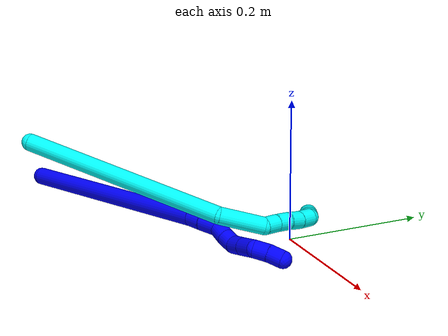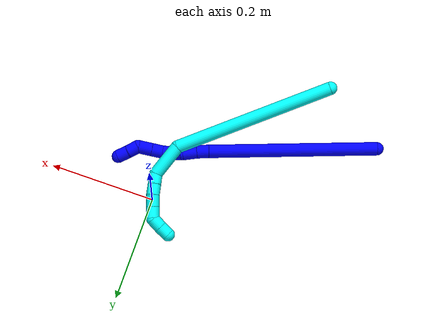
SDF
<sdf version="1.7">
 <world name="default">
  <model name="1">
   <static>0</static>
   <link name="1">
    <collision name="collision-cylinder-e_1_1_4">
     <pose>0.111933 0.013942 -0.113052 -3.01889 0.77665 -2.8435</pose>
     <geometry><cylinder><radius>0.0125</radius><length>0.319401</length></cylinder></geometry>
     <surface>
      <friction><ode><mu>1.16</mu><mu2>1.16</mu2><slip1>0</slip1><slip2>0</slip2></ode></friction>
      <contact><ode><kp>1e+06</kp><kd>1</kd><max_vel>0</max_vel><min_depth>0.001</min_depth></ode></contact>
     </surface>
    </collision>
    <visual name="visual-cylinder-e_1_1_4">
     <pose>0.111933 0.013942 -0.113052 -3.01889 0.77665 -2.8435</pose>
     <geometry><cylinder><radius>0.0125</radius><length>0.319401</length></cylinder></geometry>
     <material><ambient>0 0 1 1</ambient></material>
    </visual>
    <collision name="collision-cylinder-e_2_4_5">
     <pose>0.230928 0.028661 -0.234606 -3.05051 0.691139 -2.88977</pose>
     <geometry><cylinder><radius>0.0125</radius><length>0.022156</length></cylinder></geometry>
     <surface>
      <friction><ode><mu>1.16</mu><mu2>1.16</mu2><slip1>0</slip1><slip2>0</slip2></ode></friction>
      <contact><ode><kp>1e+06</kp><kd>1</kd><max_vel>0</max_vel><min_depth>0.001</min_depth></ode></contact>
     </surface>
    </collision>
    <visual name="visual-cylinder-e_2_4_5">
     <pose>0.230928 0.028661 -0.234606 -3.05051 0.691139 -2.88977</pose>
     <geometry><cylinder><radius>0.0125</radius><length>0.022156</length></cylinder></geometry>
     <material><ambient>0 0 1 1</ambient></material>
    </visual>
    <collision name="collision-cylinder-e_3_5_6">
     <pose>0.246068 0.031459 -0.253748 -2.95386 0.640815 -2.58871</pose>
     <geometry><cylinder><radius>0.0125</radius><length>0.027026</length></cylinder></geometry>
     <surface>
      <friction><ode><mu>1.16</mu><mu2>1.16</mu2><slip1>0</slip1><slip2>0</slip2></ode></friction>
      <contact><ode><kp>1e+06</kp><kd>1</kd><max_vel>0</max_vel><min_depth>0.001</min_depth></ode></contact>
     </surface>
    </collision>
    <visual name="visual-cylinder-e_3_5_6">
     <pose>0.246068 0.031459 -0.253748 -2.95386 0.640815 -2.58871</pose>
     <geometry><cylinder><radius>0.0125</radius><length>0.027026</length></cylinder></geometry>
     <material><ambient>0 0 1 1</ambient></material>
    </visual>
    <collision name="collision-cylinder-e_4_6_7">
     <pose>0.257606 0.031573 -0.273804 2.94171 0.345699 2.09891</pose>
     <geometry><cylinder><radius>0.0125</radius><length>0.020418</length></cylinder></geometry>
     <surface>
      <friction><ode><mu>1.16</mu><mu2>1.16</mu2><slip1>0</slip1><slip2>0</slip2></ode></friction>
      <contact><ode><kp>1e+06</kp><kd>1</kd><max_vel>0</max_vel><min_depth>0.001</min_depth></ode></contact>
     </surface>
    </collision>
    <visual name="visual-cylinder-e_4_6_7">
     <pose>0.257606 0.031573 -0.273804 2.94171 0.345699 2.09891</pose>
     <geometry><cylinder><radius>0.0125</radius><length>0.020418</length></cylinder></geometry>
     <material><ambient>0 0 1 1</ambient></material>
    </visual>
    <collision name="collision-cylinder-e_5_7_8">
     <pose>0.266191 0.028024 -0.291838 2.9533 0.528587 2.47016</pose>
     <geometry><cylinder><radius>0.0125</radius><length>0.020325</length></cylinder></geometry>
     <surface>
      <friction><ode><mu>1.16</mu><mu2>1.16</mu2><slip1>0</slip1><slip2>0</slip2></ode></friction>
      <contact><ode><kp>1e+06</kp><kd>1</kd><max_vel>0</max_vel><min_depth>0.001</min_depth></ode></contact>
     </surface>
    </collision>
    <visual name="visual-cylinder-e_5_7_8">
     <pose>0.266191 0.028024 -0.291838 2.9533 0.528587 2.47016</pose>
     <geometry><cylinder><radius>0.0125</radius><length>0.020325</length></cylinder></geometry>
     <material><ambient>0 0 1 1</ambient></material>
    </visual>
    <collision name="collision-cylinder-e_6_8_9">
     <pose>0.280686 0.025397 -0.306975 2.99174 0.95786 2.85444</pose>
     <geometry><cylinder><radius>0.0125</radius><length>0.022911</length></cylinder></geometry>
     <surface>
      <friction><ode><mu>1.16</mu><mu2>1.16</mu2><slip1>0</slip1><slip2>0</slip2></ode></friction>
      <contact><ode><kp>1e+06</kp><kd>1</kd><max_vel>0</max_vel><min_depth>0.001</min_depth></ode></contact>
     </surface>
    </collision>
    <visual name="visual-cylinder-e_6_8_9">
     <pose>0.280686 0.025397 -0.306975 2.99174 0.95786 2.85444</pose>
     <geometry><cylinder><radius>0.0125</radius><length>0.022911</length></cylinder></geometry>
     <material><ambient>0 0 1 1</ambient></material>
    </visual>
    <collision name="collision-cylinder-e_7_9_10">
     <pose>0.300568 0.02331 -0.320801 2.9918 0.957857 2.85456</pose>
     <geometry><cylinder><radius>0.0125</radius><length>0.025703</length></cylinder></geometry>
     <surface>
      <friction><ode><mu>1.16</mu><mu2>1.16</mu2><slip1>0</slip1><slip2>0</slip2></ode></friction>
      <contact><ode><kp>1e+06</kp><kd>1</kd><max_vel>0</max_vel><min_depth>0.001</min_depth></ode></contact>
     </surface>
    </collision>
    <visual name="visual-cylinder-e_7_9_10">
     <pose>0.300568 0.02331 -0.320801 2.9918 0.957857 2.85456</pose>
     <geometry><cylinder><radius>0.0125</radius><length>0.025703</length></cylinder></geometry>
     <material><ambient>0 0 1 1</ambient></material>
    </visual>
    <collision name="collision-cylinder-e_8_10_11">
     <pose>0.315127 0.026788 -0.336513 -2.64242 0.400139 -1.34402</pose>
     <geometry><cylinder><radius>0.0125</radius><length>0.020781</length></cylinder></geometry>
     <surface>
      <friction><ode><mu>1.16</mu><mu2>1.16</mu2><slip1>0</slip1><slip2>0</slip2></ode></friction>
      <contact><ode><kp>1e+06</kp><kd>1</kd><max_vel>0</max_vel><min_depth>0.001</min_depth></ode></contact>
     </surface>
    </collision>
    <visual name="visual-cylinder-e_8_10_11">
     <pose>0.315127 0.026788 -0.336513 -2.64242 0.400139 -1.34402</pose>
     <geometry><cylinder><radius>0.0125</radius><length>0.020781</length></cylinder></geometry>
     <material><ambient>0 0 1 1</ambient></material>
    </visual>
    <collision name="collision-cylinder-e_9_11_2">
     <pose>0.32285 0.034928 -0.354243 -2.77703 0.352669 -1.53692</pose>
     <geometry><cylinder><radius>0.0125</radius><length>0.021279</length></cylinder></geometry>
     <surface>
      <friction><ode><mu>1.16</mu><mu2>1.16</mu2><slip1>0</slip1><slip2>0</slip2></ode></friction>
      <contact><ode><kp>1e+06</kp><kd>1</kd><max_vel>0</max_vel><min_depth>0.001</min_depth></ode></contact>
     </surface>
    </collision>
    <visual name="visual-cylinder-e_9_11_2">
     <pose>0.32285 0.034928 -0.354243 -2.77703 0.352669 -1.53692</pose>
     <geometry><cylinder><radius>0.0125</radius><length>0.021279</length></cylinder></geometry>
     <material><ambient>0 0 1 1</ambient></material>
    </visual>
    <collision name="collision-sphere-2">
     <pose>0.326525 0.038488 -0.363572 0 -0 0</pose>
     <geometry><sphere><radius>0.0125</radius></sphere></geometry>
     <surface>
      <friction><ode><mu>1.16</mu><mu2>1.16</mu2><slip1>0</slip1><slip2>0</slip2></ode></friction>
      <contact><ode><kp>1e+06</kp><kd>1</kd><max_vel>0</max_vel><min_depth>0.001</min_depth></ode></contact>
     </surface>
    </collision>
    <visual name="visual-sphere-2">
     <pose>0.326525 0.038488 -0.363572 0 -0 0</pose>
     <geometry><sphere><radius>0.0125</radius></sphere></geometry>
     <material><ambient>0 0 1 1</ambient></material>
    </visual>
    <collision name="collision-sphere-11">
     <pose>0.319175 0.031369 -0.344915 0 -0 0</pose>
     <geometry><sphere><radius>0.0125</radius></sphere></geometry>
     <surface>
      <friction><ode><mu>1.16</mu><mu2>1.16</mu2><slip1>0</slip1><slip2>0</slip2></ode></friction>
      <contact><ode><kp>1e+06</kp><kd>1</kd><max_vel>0</max_vel><min_depth>0.001</min_depth></ode></contact>
     </surface>
    </collision>
    <visual name="visual-sphere-11">
     <pose>0.319175 0.031369 -0.344915 0 -0 0</pose>
     <geometry><sphere><radius>0.0125</radius></sphere></geometry>
     <material><ambient>0 0 1 1</ambient></material>
    </visual>
    <collision name="collision-sphere-10">
     <pose>0.31108 0.022207 -0.328111 0 -0 0</pose>
     <geometry><sphere><radius>0.0125</radius></sphere></geometry>
     <surface>
      <friction><ode><mu>1.16</mu><mu2>1.16</mu2><slip1>0</slip1><slip2>0</slip2></ode></friction>
      <contact><ode><kp>1e+06</kp><kd>1</kd><max_vel>0</max_vel><min_depth>0.001</min_depth></ode></contact>
     </surface>
    </collision>
    <visual name="visual-sphere-10">
     <pose>0.31108 0.022207 -0.328111 0 -0 0</pose>
     <geometry><sphere><radius>0.0125</radius></sphere></geometry>
     <material><ambient>0 0 1 1</ambient></material>
    </visual>
    <collision name="collision-sphere-9">
     <pose>0.290056 0.024413 -0.313491 0 -0 0</pose>
     <geometry><sphere><radius>0.0125</radius></sphere></geometry>
     <surface>
      <friction><ode><mu>1.16</mu><mu2>1.16</mu2><slip1>0</slip1><slip2>0</slip2></ode></friction>
      <contact><ode><kp>1e+06</kp><kd>1</kd><max_vel>0</max_vel><min_depth>0.001</min_depth></ode></contact>
     </surface>
    </collision>
    <visual name="visual-sphere-9">
     <pose>0.290056 0.024413 -0.313491 0 -0 0</pose>
     <geometry><sphere><radius>0.0125</radius></sphere></geometry>
     <material><ambient>0 0 1 1</ambient></material>
    </visual>
    <collision name="collision-sphere-4">
     <pose>0.223867 0.027885 -0.226105 0 -0 0</pose>
     <geometry><sphere><radius>0.0125</radius></sphere></geometry>
     <surface>
      <friction><ode><mu>1.16</mu><mu2>1.16</mu2><slip1>0</slip1><slip2>0</slip2></ode></friction>
      <contact><ode><kp>1e+06</kp><kd>1</kd><max_vel>0</max_vel><min_depth>0.001</min_depth></ode></contact>
     </surface>
    </collision>
    <visual name="visual-sphere-4">
     <pose>0.223867 0.027885 -0.226105 0 -0 0</pose>
     <geometry><sphere><radius>0.0125</radius></sphere></geometry>
     <material><ambient>0 0 1 1</ambient></material>
    </visual>
    <collision name="collision-sphere-1">
     <geometry><sphere><radius>0.0125</radius></sphere></geometry>
     <surface>
      <friction><ode><mu>1.16</mu><mu2>1.16</mu2><slip1>0</slip1><slip2>0</slip2></ode></friction>
      <contact><ode><kp>1e+06</kp><kd>1</kd><max_vel>0</max_vel><min_depth>0.001</min_depth></ode></contact>
     </surface>
    </collision>
    <visual name="visual-sphere-1">
     <geometry><sphere><radius>0.0125</radius></sphere></geometry>
     <material><ambient>0 0 1 1</ambient></material>
    </visual>
    <collision name="collision-sphere-8">
     <pose>0.271316 0.026381 -0.300458 0 -0 0</pose>
     <geometry><sphere><radius>0.0125</radius></sphere></geometry>
     <surface>
      <friction><ode><mu>1.16</mu><mu2>1.16</mu2><slip1>0</slip1><slip2>0</slip2></ode></friction>
      <contact><ode><kp>1e+06</kp><kd>1</kd><max_vel>0</max_vel><min_depth>0.001</min_depth></ode></contact>
     </surface>
    </collision>
    <visual name="visual-sphere-8">
     <pose>0.271316 0.026381 -0.300458 0 -0 0</pose>
     <geometry><sphere><radius>0.0125</radius></sphere></geometry>
     <material><ambient>0 0 1 1</ambient></material>
    </visual>
    <collision name="collision-sphere-5">
     <pose>0.237989 0.029437 -0.243106 0 -0 0</pose>
     <geometry><sphere><radius>0.0125</radius></sphere></geometry>
     <surface>
      <friction><ode><mu>1.16</mu><mu2>1.16</mu2><slip1>0</slip1><slip2>0</slip2></ode></friction>
      <contact><ode><kp>1e+06</kp><kd>1</kd><max_vel>0</max_vel><min_depth>0.001</min_depth></ode></contact>
     </surface>
    </collision>
    <visual name="visual-sphere-5">
     <pose>0.237989 0.029437 -0.243106 0 -0 0</pose>
     <geometry><sphere><radius>0.0125</radius></sphere></geometry>
     <material><ambient>0 0 1 1</ambient></material>
    </visual>
    <collision name="collision-sphere-6">
     <pose>0.254147 0.033481 -0.26439 0 -0 0</pose>
     <geometry><sphere><radius>0.0125</radius></sphere></geometry>
     <surface>
      <friction><ode><mu>1.16</mu><mu2>1.16</mu2><slip1>0</slip1><slip2>0</slip2></ode></friction>
      <contact><ode><kp>1e+06</kp><kd>1</kd><max_vel>0</max_vel><min_depth>0.001</min_depth></ode></contact>
     </surface>
    </collision>
    <visual name="visual-sphere-6">
     <pose>0.254147 0.033481 -0.26439 0 -0 0</pose>
     <geometry><sphere><radius>0.0125</radius></sphere></geometry>
     <material><ambient>0 0 1 1</ambient></material>
    </visual>
    <collision name="collision-sphere-7">
     <pose>0.261066 0.029666 -0.283218 0 -0 0</pose>
     <geometry><sphere><radius>0.0125</radius></sphere></geometry>
     <surface>
      <friction><ode><mu>1.16</mu><mu2>1.16</mu2><slip1>0</slip1><slip2>0</slip2></ode></friction>
      <contact><ode><kp>1e+06</kp><kd>1</kd><max_vel>0</max_vel><min_depth>0.001</min_depth></ode></contact>
     </surface>
    </collision>
    <visual name="visual-sphere-7">
     <pose>0.261066 0.029666 -0.283218 0 -0 0</pose>
     <geometry><sphere><radius>0.0125</radius></sphere></geometry>
     <material><ambient>0 0 1 1</ambient></material>
    </visual>
    <inertial>
     <pose>0.171526 0.019267 -0.178993 0 -0 0</pose>
     <mass>0.5</mass>
     <inertia>
      <ixx>-0.002414</ixx>
      <ixy>0</ixy>
      <ixz>0</ixz>
      <iyy>0.002097</iyy>
      <iyz>0</iyz>
      <izz>-0.002188</izz>
     </inertia>
    </inertial>
   </link>
   <pose>-0.368691 -0.23302 0.011497 0.285654 -0.802692 0.081527</pose>
  </model>
  <model name="3">
   <static>0</static>
   <link name="3">
    <collision name="collision-cylinder-e_1_1_4">
     <pose>0.025589 0.005516 -0.151489 -3.1052 0.167225 -2.71391</pose>
     <geometry><cylinder><radius>0.0125</radius><length>0.307468</length></cylinder></geometry>
     <surface>
      <friction><ode><mu>1.16</mu><mu2>1.16</mu2><slip1>0</slip1><slip2>0</slip2></ode></friction>
      <contact><ode><kp>1e+06</kp><kd>1</kd><max_vel>0</max_vel><min_depth>0.001</min_depth></ode></contact>
     </surface>
    </collision>
    <visual name="visual-cylinder-e_1_1_4">
     <pose>0.025589 0.005516 -0.151489 -3.1052 0.167225 -2.71391</pose>
     <geometry><cylinder><radius>0.0125</radius><length>0.307468</length></cylinder></geometry>
     <material><ambient>0.003922 1 0.996078 1</ambient></material>
    </visual>
    <collision name="collision-cylinder-e_2_4_5">
     <pose>0.052653 0.028195 -0.330702 -2.58725 0.045222 -0.158651</pose>
     <geometry><cylinder><radius>0.0125</radius><length>0.065279</length></cylinder></geometry>
     <surface>
      <friction><ode><mu>1.16</mu><mu2>1.16</mu2><slip1>0</slip1><slip2>0</slip2></ode></friction>
      <contact><ode><kp>1e+06</kp><kd>1</kd><max_vel>0</max_vel><min_depth>0.001</min_depth></ode></contact>
     </surface>
    </collision>
    <visual name="visual-cylinder-e_2_4_5">
     <pose>0.052653 0.028195 -0.330702 -2.58725 0.045222 -0.158651</pose>
     <geometry><cylinder><radius>0.0125</radius><length>0.065279</length></cylinder></geometry>
     <material><ambient>0.003922 1 0.996078 1</ambient></material>
    </visual>
    <collision name="collision-cylinder-e_3_5_6">
     <pose>0.05538 0.054663 -0.362338 -1.96885 0.123444 -0.185525</pose>
     <geometry><cylinder><radius>0.0125</radius><length>0.020341</length></cylinder></geometry>
     <surface>
      <friction><ode><mu>1.16</mu><mu2>1.16</mu2><slip1>0</slip1><slip2>0</slip2></ode></friction>
      <contact><ode><kp>1e+06</kp><kd>1</kd><max_vel>0</max_vel><min_depth>0.001</min_depth></ode></contact>
     </surface>
    </collision>
    <visual name="visual-cylinder-e_3_5_6">
     <pose>0.05538 0.054663 -0.362338 -1.96885 0.123444 -0.185525</pose>
     <geometry><cylinder><radius>0.0125</radius><length>0.020341</length></cylinder></geometry>
     <material><ambient>0.003922 1 0.996078 1</ambient></material>
    </visual>
    <collision name="collision-cylinder-e_4_6_7">
     <pose>0.057406 0.073143 -0.370427 -1.99793 0.076517 -0.118815</pose>
     <geometry><cylinder><radius>0.0125</radius><length>0.020223</length></cylinder></geometry>
     <surface>
      <friction><ode><mu>1.16</mu><mu2>1.16</mu2><slip1>0</slip1><slip2>0</slip2></ode></friction>
      <contact><ode><kp>1e+06</kp><kd>1</kd><max_vel>0</max_vel><min_depth>0.001</min_depth></ode></contact>
     </surface>
    </collision>
    <visual name="visual-cylinder-e_4_6_7">
     <pose>0.057406 0.073143 -0.370427 -1.99793 0.076517 -0.118815</pose>
     <geometry><cylinder><radius>0.0125</radius><length>0.020223</length></cylinder></geometry>
     <material><ambient>0.003922 1 0.996078 1</ambient></material>
    </visual>
    <collision name="collision-cylinder-e_5_7_8">
     <pose>0.057356 0.09297 -0.378446 -1.91704 -0.072559 0.103268</pose>
     <geometry><cylinder><radius>0.0125</radius><length>0.022705</length></cylinder></geometry>
     <surface>
      <friction><ode><mu>1.16</mu><mu2>1.16</mu2><slip1>0</slip1><slip2>0</slip2></ode></friction>
      <contact><ode><kp>1e+06</kp><kd>1</kd><max_vel>0</max_vel><min_depth>0.001</min_depth></ode></contact>
     </surface>
    </collision>
    <visual name="visual-cylinder-e_5_7_8">
     <pose>0.057356 0.09297 -0.378446 -1.91704 -0.072559 0.103268</pose>
     <geometry><cylinder><radius>0.0125</radius><length>0.022705</length></cylinder></geometry>
     <material><ambient>0.003922 1 0.996078 1</ambient></material>
    </visual>
    <collision name="collision-cylinder-e_6_8_9">
     <pose>0.056699 0.114318 -0.385544 -1.86626 0.014859 -0.020054</pose>
     <geometry><cylinder><radius>0.0125</radius><length>0.022367</length></cylinder></geometry>
     <surface>
      <friction><ode><mu>1.16</mu><mu2>1.16</mu2><slip1>0</slip1><slip2>0</slip2></ode></friction>
      <contact><ode><kp>1e+06</kp><kd>1</kd><max_vel>0</max_vel><min_depth>0.001</min_depth></ode></contact>
     </surface>
    </collision>
    <visual name="visual-cylinder-e_6_8_9">
     <pose>0.056699 0.114318 -0.385544 -1.86626 0.014859 -0.020054</pose>
     <geometry><cylinder><radius>0.0125</radius><length>0.022367</length></cylinder></geometry>
     <material><ambient>0.003922 1 0.996078 1</ambient></material>
    </visual>
    <collision name="collision-cylinder-e_7_9_10">
     <pose>0.052842 0.134181 -0.385303 -1.20632 -0.389171 0.269842</pose>
     <geometry><cylinder><radius>0.0125</radius><length>0.021205</length></cylinder></geometry>
     <surface>
      <friction><ode><mu>1.16</mu><mu2>1.16</mu2><slip1>0</slip1><slip2>0</slip2></ode></friction>
      <contact><ode><kp>1e+06</kp><kd>1</kd><max_vel>0</max_vel><min_depth>0.001</min_depth></ode></contact>
     </surface>
    </collision>
    <visual name="visual-cylinder-e_7_9_10">
     <pose>0.052842 0.134181 -0.385303 -1.20632 -0.389171 0.269842</pose>
     <geometry><cylinder><radius>0.0125</radius><length>0.021205</length></cylinder></geometry>
     <material><ambient>0.003922 1 0.996078 1</ambient></material>
    </visual>
    <collision name="collision-cylinder-e_8_10_2">
     <pose>0.045242 0.152032 -0.377817 -1.14023 -0.358132 0.231061</pose>
     <geometry><cylinder><radius>0.0125</radius><length>0.020411</length></cylinder></geometry>
     <surface>
      <friction><ode><mu>1.16</mu><mu2>1.16</mu2><slip1>0</slip1><slip2>0</slip2></ode></friction>
      <contact><ode><kp>1e+06</kp><kd>1</kd><max_vel>0</max_vel><min_depth>0.001</min_depth></ode></contact>
     </surface>
    </collision>
    <visual name="visual-cylinder-e_8_10_2">
     <pose>0.045242 0.152032 -0.377817 -1.14023 -0.358132 0.231061</pose>
     <geometry><cylinder><radius>0.0125</radius><length>0.020411</length></cylinder></geometry>
     <material><ambient>0.003922 1 0.996078 1</ambient></material>
    </visual>
    <collision name="collision-sphere-2">
     <pose>0.041665 0.160718 -0.373828 0 -0 0</pose>
     <geometry><sphere><radius>0.0125</radius></sphere></geometry>
     <surface>
      <friction><ode><mu>1.16</mu><mu2>1.16</mu2><slip1>0</slip1><slip2>0</slip2></ode></friction>
      <contact><ode><kp>1e+06</kp><kd>1</kd><max_vel>0</max_vel><min_depth>0.001</min_depth></ode></contact>
     </surface>
    </collision>
    <visual name="visual-sphere-2">
     <pose>0.041665 0.160718 -0.373828 0 -0 0</pose>
     <geometry><sphere><radius>0.0125</radius></sphere></geometry>
     <material><ambient>0.003922 1 0.996078 1</ambient></material>
    </visual>
    <collision name="collision-sphere-10">
     <pose>0.048819 0.143347 -0.381807 0 -0 0</pose>
     <geometry><sphere><radius>0.0125</radius></sphere></geometry>
     <surface>
      <friction><ode><mu>1.16</mu><mu2>1.16</mu2><slip1>0</slip1><slip2>0</slip2></ode></friction>
      <contact><ode><kp>1e+06</kp><kd>1</kd><max_vel>0</max_vel><min_depth>0.001</min_depth></ode></contact>
     </surface>
    </collision>
    <visual name="visual-sphere-10">
     <pose>0.048819 0.143347 -0.381807 0 -0 0</pose>
     <geometry><sphere><radius>0.0125</radius></sphere></geometry>
     <material><ambient>0.003922 1 0.996078 1</ambient></material>
    </visual>
    <collision name="collision-sphere-9">
     <pose>0.056865 0.125016 -0.3888 0 -0 0</pose>
     <geometry><sphere><radius>0.0125</radius></sphere></geometry>
     <surface>
      <friction><ode><mu>1.16</mu><mu2>1.16</mu2><slip1>0</slip1><slip2>0</slip2></ode></friction>
      <contact><ode><kp>1e+06</kp><kd>1</kd><max_vel>0</max_vel><min_depth>0.001</min_depth></ode></contact>
     </surface>
    </collision>
    <visual name="visual-sphere-9">
     <pose>0.056865 0.125016 -0.3888 0 -0 0</pose>
     <geometry><sphere><radius>0.0125</radius></sphere></geometry>
     <material><ambient>0.003922 1 0.996078 1</ambient></material>
    </visual>
    <collision name="collision-sphere-4">
     <pose>0.051177 0.011032 -0.302978 0 -0 0</pose>
     <geometry><sphere><radius>0.0125</radius></sphere></geometry>
     <surface>
      <friction><ode><mu>1.16</mu><mu2>1.16</mu2><slip1>0</slip1><slip2>0</slip2></ode></friction>
      <contact><ode><kp>1e+06</kp><kd>1</kd><max_vel>0</max_vel><min_depth>0.001</min_depth></ode></contact>
     </surface>
    </collision>
    <visual name="visual-sphere-4">
     <pose>0.051177 0.011032 -0.302978 0 -0 0</pose>
     <geometry><sphere><radius>0.0125</radius></sphere></geometry>
     <material><ambient>0.003922 1 0.996078 1</ambient></material>
    </visual>
    <collision name="collision-sphere-1">
     <geometry><sphere><radius>0.0125</radius></sphere></geometry>
     <surface>
      <friction><ode><mu>1.16</mu><mu2>1.16</mu2><slip1>0</slip1><slip2>0</slip2></ode></friction>
      <contact><ode><kp>1e+06</kp><kd>1</kd><max_vel>0</max_vel><min_depth>0.001</min_depth></ode></contact>
     </surface>
    </collision>
    <visual name="visual-sphere-1">
     <geometry><sphere><radius>0.0125</radius></sphere></geometry>
     <material><ambient>0.003922 1 0.996078 1</ambient></material>
    </visual>
    <collision name="collision-sphere-8">
     <pose>0.056533 0.103621 -0.382288 0 -0 0</pose>
     <geometry><sphere><radius>0.0125</radius></sphere></geometry>
     <surface>
      <friction><ode><mu>1.16</mu><mu2>1.16</mu2><slip1>0</slip1><slip2>0</slip2></ode></friction>
      <contact><ode><kp>1e+06</kp><kd>1</kd><max_vel>0</max_vel><min_depth>0.001</min_depth></ode></contact>
     </surface>
    </collision>
    <visual name="visual-sphere-8">
     <pose>0.056533 0.103621 -0.382288 0 -0 0</pose>
     <geometry><sphere><radius>0.0125</radius></sphere></geometry>
     <material><ambient>0.003922 1 0.996078 1</ambient></material>
    </visual>
    <collision name="collision-sphere-5">
     <pose>0.054128 0.045359 -0.358425 0 -0 0</pose>
     <geometry><sphere><radius>0.0125</radius></sphere></geometry>
     <surface>
      <friction><ode><mu>1.16</mu><mu2>1.16</mu2><slip1>0</slip1><slip2>0</slip2></ode></friction>
      <contact><ode><kp>1e+06</kp><kd>1</kd><max_vel>0</max_vel><min_depth>0.001</min_depth></ode></contact>
     </surface>
    </collision>
    <visual name="visual-sphere-5">
     <pose>0.054128 0.045359 -0.358425 0 -0 0</pose>
     <geometry><sphere><radius>0.0125</radius></sphere></geometry>
     <material><ambient>0.003922 1 0.996078 1</ambient></material>
    </visual>
    <collision name="collision-sphere-6">
     <pose>0.056633 0.063967 -0.36625 0 -0 0</pose>
     <geometry><sphere><radius>0.0125</radius></sphere></geometry>
     <surface>
      <friction><ode><mu>1.16</mu><mu2>1.16</mu2><slip1>0</slip1><slip2>0</slip2></ode></friction>
      <contact><ode><kp>1e+06</kp><kd>1</kd><max_vel>0</max_vel><min_depth>0.001</min_depth></ode></contact>
     </surface>
    </collision>
    <visual name="visual-sphere-6">
     <pose>0.056633 0.063967 -0.36625 0 -0 0</pose>
     <geometry><sphere><radius>0.0125</radius></sphere></geometry>
     <material><ambient>0.003922 1 0.996078 1</ambient></material>
    </visual>
    <collision name="collision-sphere-7">
     <pose>0.058179 0.082319 -0.374603 0 -0 0</pose>
     <geometry><sphere><radius>0.0125</radius></sphere></geometry>
     <surface>
      <friction><ode><mu>1.16</mu><mu2>1.16</mu2><slip1>0</slip1><slip2>0</slip2></ode></friction>
      <contact><ode><kp>1e+06</kp><kd>1</kd><max_vel>0</max_vel><min_depth>0.001</min_depth></ode></contact>
     </surface>
    </collision>
    <visual name="visual-sphere-7">
     <pose>0.058179 0.082319 -0.374603 0 -0 0</pose>
     <geometry><sphere><radius>0.0125</radius></sphere></geometry>
     <material><ambient>0.003922 1 0.996078 1</ambient></material>
    </visual>
    <inertial>
     <pose>0.036413 0.033488 -0.232252 0 -0 0</pose>
     <mass>0.5</mass>
     <inertia>
      <ixx>-0.003145</ixx>
      <ixy>0</ixy>
      <ixz>0</ixz>
      <iyy>0.001211</iyy>
      <iyz>0</iyz>
      <izz>-0.000544</izz>
     </inertia>
    </inertial>
   </link>
   <pose>-0.251831 -0.287948 0.107283 0.000802 -1.20391 0.627903</pose>
  </model>
 </world>
</sdf>
